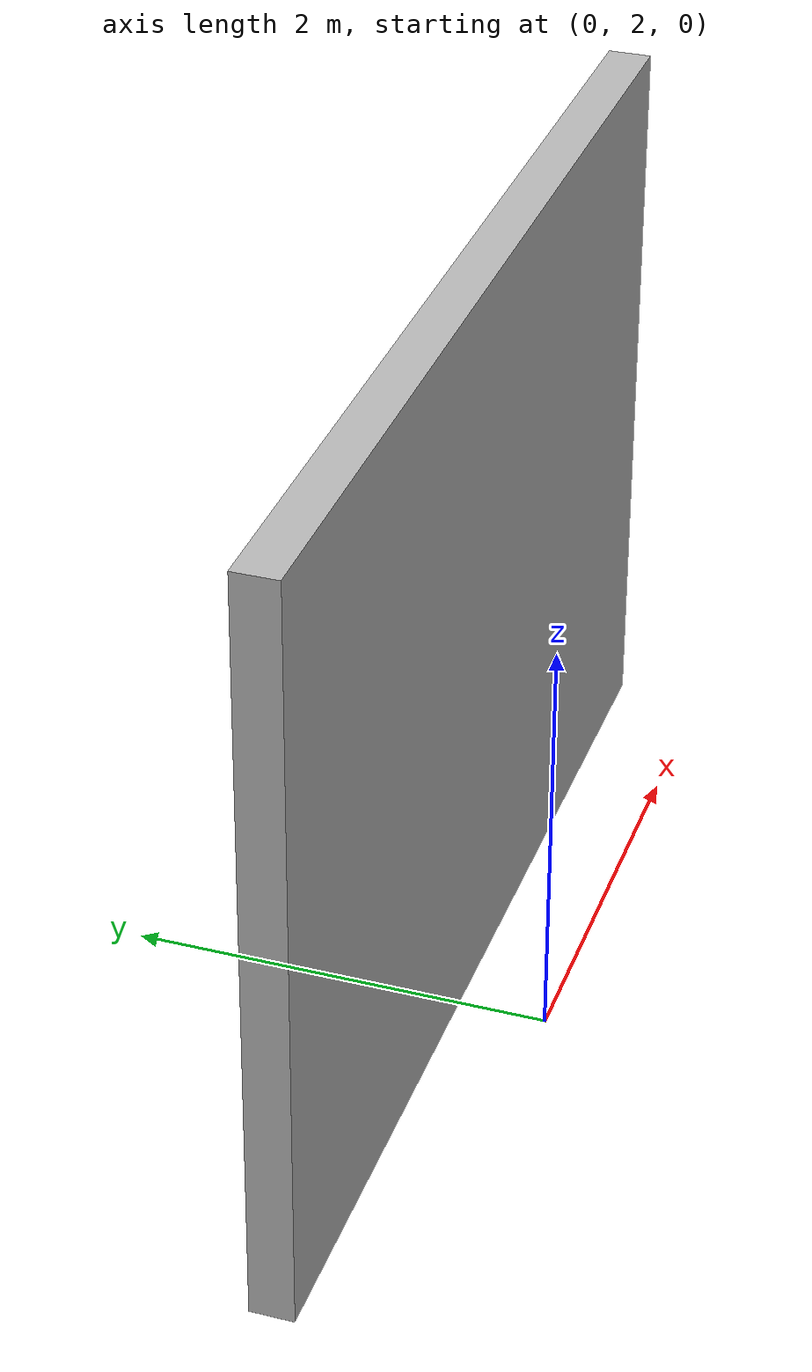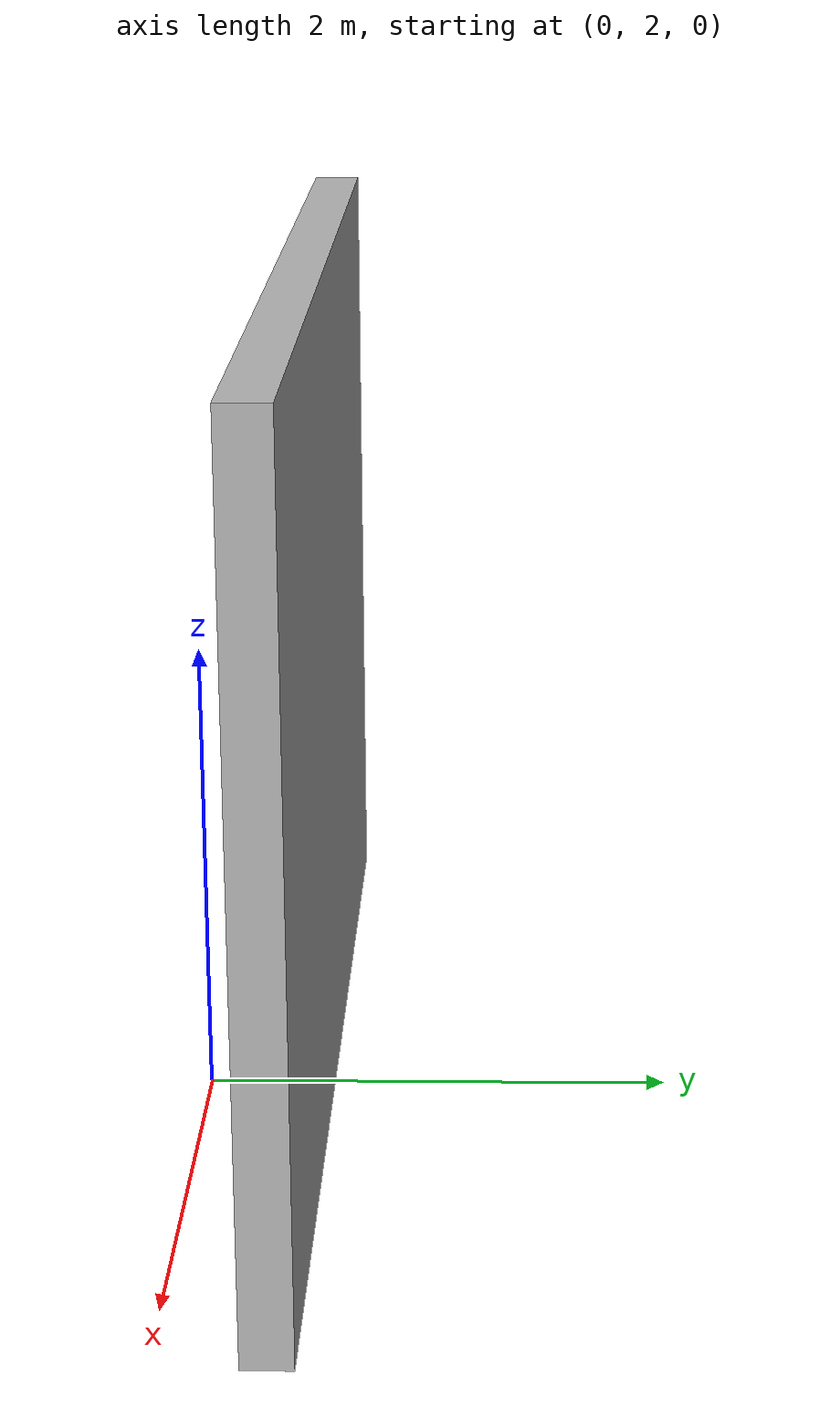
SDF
<?xml version="1.0"?>
<sdf version="1.5">
    <model name="house_wall_3">
        <static>true</static>
        <link name="link">
            <collision name="collision_wall">
                <pose>0 0 0.05 0 0 0</pose>
                <geometry>
                    <mesh>
                        <uri>model://house_scene_2_wall_3/meshes/st3.dae</uri>
                    </mesh>
                </geometry>
            </collision>
            <visual name="visual_walls">
              <pose>0 0 0.05 0 0 0</pose>
              <geometry>
              <mesh>
                 <uri>model://house_scene_2_wall_3/meshes/st3.dae</uri>
              </mesh>
              </geometry>
             </visual>
        </link>
    </model>
</sdf>
